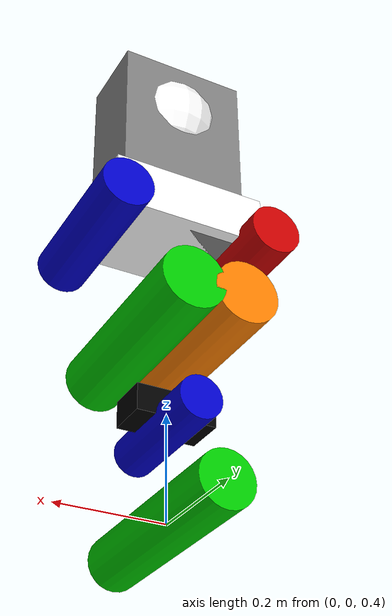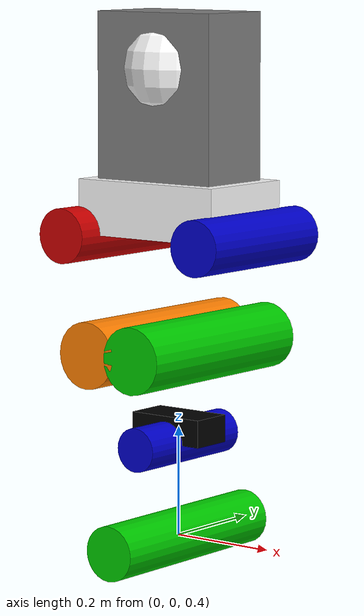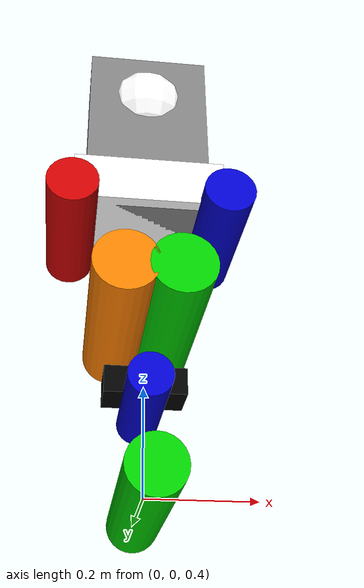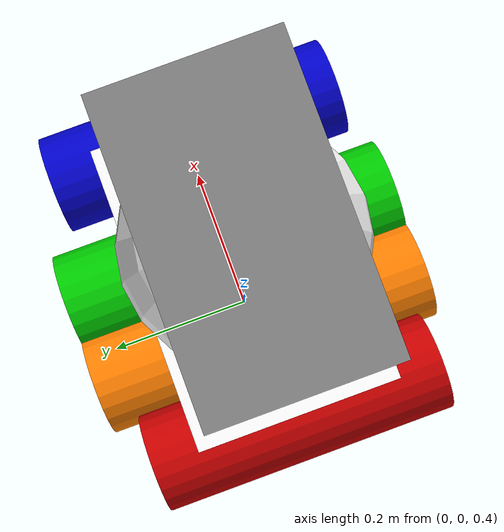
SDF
<?xml version="1.0"?>
<sdf version="1.7">
  <model name="humanoid_robot">
    <pose>0 0 1 0 0 0</pose>
    <static>false</static>

    <!-- Base Link -->
    <link name="base_link">
      <pose>0 0 0 0 0 0</pose>
      <inertial>
        <mass>5.0</mass>
        <inertia>
          <ixx>0.1</ixx>
          <ixy>0.0</ixy>
          <ixz>0.0</ixz>
          <iyy>0.1</iyy>
          <iyz>0.0</iyz>
          <izz>0.1</izz>
        </inertia>
      </inertial>

      <visual name="base_visual">
        <geometry>
          <box>
            <size>0.3 0.2 0.1</size>
          </box>
        </geometry>
        <material>
          <ambient>1 1 1 1</ambient>
          <diffuse>1 1 1 1</diffuse>
          <specular>0.1 0.1 0.1 1</specular>
        </material>
      </visual>

      <collision name="base_collision">
        <geometry>
          <box>
            <size>0.3 0.2 0.1</size>
          </box>
        </geometry>
      </collision>
    </link>

    <!-- Torso -->
    <joint name="torso_joint" type="fixed">
      <parent>base_link</parent>
      <child>torso</child>
    </joint>

    <link name="torso">
      <pose>0 0 0.15 0 0 0</pose>
      <inertial>
        <mass>8.0</mass>
        <inertia>
          <ixx>0.2</ixx>
          <ixy>0.0</ixy>
          <ixz>0.0</ixz>
          <iyy>0.3</iyy>
          <iyz>0.0</iyz>
          <izz>0.2</izz>
        </inertia>
      </inertial>

      <visual name="torso_visual">
        <geometry>
          <box>
            <size>0.25 0.15 0.4</size>
          </box>
        </geometry>
        <material>
          <ambient>0.5 0.5 0.5 1</ambient>
          <diffuse>0.5 0.5 0.5 1</diffuse>
        </material>
      </visual>

      <collision name="torso_collision">
        <geometry>
          <box>
            <size>0.25 0.15 0.4</size>
          </box>
        </geometry>
      </collision>
    </link>

    <!-- Head -->
    <joint name="neck_joint" type="revolute">
      <parent>torso</parent>
      <child>head</child>
      <pose>0 0 0.25 0 0 0</pose>
      <axis>
        <xyz>0 1 0</xyz>
        <limit>
          <lower>-0.5</lower>
          <upper>0.5</upper>
          <effort>10.0</effort>
          <velocity>2.0</velocity>
        </limit>
      </axis>
    </joint>

    <link name="head">
      <pose>0 0 0.25 0 0 0</pose>
      <inertial>
        <mass>1.0</mass>
        <inertia>
          <ixx>0.002</ixx>
          <ixy>0.0</ixy>
          <ixz>0.0</ixz>
          <iyy>0.002</iyy>
          <iyz>0.0</iyz>
          <izz>0.002</izz>
        </inertia>
      </inertial>

      <visual name="head_visual">
        <geometry>
          <sphere>
            <radius>0.1</radius>
          </sphere>
        </geometry>
        <material>
          <ambient>1 1 1 1</ambient>
          <diffuse>1 1 1 1</diffuse>
        </material>
      </visual>

      <collision name="head_collision">
        <geometry>
          <sphere>
            <radius>0.1</radius>
          </sphere>
        </geometry>
      </collision>
    </link>

    <!-- Left Arm -->
    <joint name="left_shoulder_joint" type="revolute">
      <parent>torso</parent>
      <child>left_upper_arm</child>
      <pose>0.15 0 0.1 0 0 0</pose>
      <axis>
        <xyz>0 1 0</xyz>
        <limit>
          <lower>-1.57</lower>
          <upper>1.57</upper>
          <effort>15.0</effort>
          <velocity>2.0</velocity>
        </limit>
      </axis>
    </joint>

    <link name="left_upper_arm">
      <pose>0.15 0 0.1 0 0 0</pose>
      <inertial>
        <mass>2.0</mass>
        <inertia>
          <ixx>0.02</ixx>
          <ixy>0.0</ixy>
          <ixz>0.0</ixz>
          <iyy>0.02</iyy>
          <iyz>0.0</iyz>
          <izz>0.001</izz>
        </inertia>
      </inertial>

      <visual name="left_upper_arm_visual">
        <geometry>
          <cylinder>
            <length>0.3</length>
            <radius>0.05</radius>
          </cylinder>
        </geometry>
        <pose>0 0 -0.15 1.57 0 0</pose>
        <material>
          <ambient>0 0 0.8 1</ambient>
          <diffuse>0 0 0.8 1</diffuse>
        </material>
      </visual>

      <collision name="left_upper_arm_collision">
        <geometry>
          <cylinder>
            <length>0.3</length>
            <radius>0.05</radius>
          </cylinder>
        </geometry>
        <pose>0 0 -0.15 1.57 0 0</pose>
      </collision>
    </link>

    <joint name="left_elbow_joint" type="revolute">
      <parent>left_upper_arm</parent>
      <child>left_lower_arm</child>
      <pose>0 0 -0.3 0 0 0</pose>
      <axis>
        <xyz>0 0 1</xyz>
        <limit>
          <lower>-1.57</lower>
          <upper>1.57</upper>
          <effort>10.0</effort>
          <velocity>2.0</velocity>
        </limit>
      </axis>
    </joint>

    <link name="left_lower_arm">
      <pose>0 0 -0.3 0 0 0</pose>
      <inertial>
        <mass>1.5</mass>
        <inertia>
          <ixx>0.01</ixx>
          <ixy>0.0</ixy>
          <ixz>0.0</ixz>
          <iyy>0.01</iyy>
          <iyz>0.0</iyz>
          <izz>0.001</izz>
        </inertia>
      </inertial>

      <visual name="left_lower_arm_visual">
        <geometry>
          <cylinder>
            <length>0.25</length>
            <radius>0.04</radius>
          </cylinder>
        </geometry>
        <pose>0 0 -0.125 1.57 0 0</pose>
        <material>
          <ambient>0 0 0.8 1</ambient>
          <diffuse>0 0 0.8 1</diffuse>
        </material>
      </visual>

      <collision name="left_lower_arm_collision">
        <geometry>
          <cylinder>
            <length>0.25</length>
            <radius>0.04</radius>
          </cylinder>
        </geometry>
        <pose>0 0 -0.125 1.57 0 0</pose>
      </collision>
    </link>

    <!-- Right Arm -->
    <joint name="right_shoulder_joint" type="revolute">
      <parent>torso</parent>
      <child>right_upper_arm</child>
      <pose>-0.15 0 0.1 0 0 0</pose>
      <axis>
        <xyz>0 1 0</xyz>
        <limit>
          <lower>-1.57</lower>
          <upper>1.57</upper>
          <effort>15.0</effort>
          <velocity>2.0</velocity>
        </limit>
      </axis>
    </joint>

    <link name="right_upper_arm">
      <pose>-0.15 0 0.1 0 0 0</pose>
      <inertial>
        <mass>2.0</mass>
        <inertia>
          <ixx>0.02</ixx>
          <ixy>0.0</ixy>
          <ixz>0.0</ixz>
          <iyy>0.02</iyy>
          <iyz>0.0</iyz>
          <izz>0.001</izz>
        </inertia>
      </inertial>

      <visual name="right_upper_arm_visual">
        <geometry>
          <cylinder>
            <length>0.3</length>
            <radius>0.05</radius>
          </cylinder>
        </geometry>
        <pose>0 0 -0.15 1.57 0 0</pose>
        <material>
          <ambient>0.8 0 0 1</ambient>
          <diffuse>0.8 0 0 1</diffuse>
        </material>
      </visual>

      <collision name="right_upper_arm_collision">
        <geometry>
          <cylinder>
            <length>0.3</length>
            <radius>0.05</radius>
          </cylinder>
        </geometry>
        <pose>0 0 -0.15 1.57 0 0</pose>
      </collision>
    </link>

    <joint name="right_elbow_joint" type="revolute">
      <parent>right_upper_arm</parent>
      <child>right_lower_arm</child>
      <pose>0 0 -0.3 0 0 0</pose>
      <axis>
        <xyz>0 0 1</xyz>
        <limit>
          <lower>-1.57</lower>
          <upper>1.57</upper>
          <effort>10.0</effort>
          <velocity>2.0</velocity>
        </limit>
      </axis>
    </joint>

    <link name="right_lower_arm">
      <pose>0 0 -0.3 0 0 0</pose>
      <inertial>
        <mass>1.5</mass>
        <inertia>
          <ixx>0.01</ixx>
          <ixy>0.0</ixy>
          <ixz>0.0</ixz>
          <iyy>0.01</iyy>
          <iyz>0.0</iyz>
          <izz>0.001</izz>
        </inertia>
      </inertial>

      <visual name="right_lower_arm_visual">
        <geometry>
          <cylinder>
            <length>0.25</length>
            <radius>0.04</radius>
          </cylinder>
        </geometry>
        <pose>0 0 -0.125 1.57 0 0</pose>
        <material>
          <ambient>0.8 0 0 1</ambient>
          <diffuse>0.8 0 0 1</diffuse>
        </material>
      </visual>

      <collision name="right_lower_arm_collision">
        <geometry>
          <cylinder>
            <length>0.25</length>
            <radius>0.04</radius>
          </cylinder>
        </geometry>
        <pose>0 0 -0.125 1.57 0 0</pose>
      </collision>
    </link>

    <!-- Left Leg -->
    <joint name="left_hip_joint" type="revolute">
      <parent>base_link</parent>
      <child>left_thigh</child>
      <pose>0.05 0 -0.05 0 0 0</pose>
      <axis>
        <xyz>0 1 0</xyz>
        <limit>
          <lower>-1.57</lower>
          <upper>1.57</upper>
          <effort>30.0</effort>
          <velocity>2.0</velocity>
        </limit>
      </axis>
    </joint>

    <link name="left_thigh">
      <pose>0.05 0 -0.05 0 0 0</pose>
      <inertial>
        <mass>3.0</mass>
        <inertia>
          <ixx>0.04</ixx>
          <ixy>0.0</ixy>
          <ixz>0.0</ixz>
          <iyy>0.04</iyy>
          <iyz>0.0</iyz>
          <izz>0.002</izz>
        </inertia>
      </inertial>

      <visual name="left_thigh_visual">
        <geometry>
          <cylinder>
            <length>0.4</length>
            <radius>0.06</radius>
          </cylinder>
        </geometry>
        <pose>0 0 -0.2 1.57 0 0</pose>
        <material>
          <ambient>0 0.8 0 1</ambient>
          <diffuse>0 0.8 0 1</diffuse>
        </material>
      </visual>

      <collision name="left_thigh_collision">
        <geometry>
          <cylinder>
            <length>0.4</length>
            <radius>0.06</radius>
          </cylinder>
        </geometry>
        <pose>0 0 -0.2 1.57 0 0</pose>
      </collision>
    </link>

    <joint name="left_knee_joint" type="revolute">
      <parent>left_thigh</parent>
      <child>left_shin</child>
      <pose>0 0 -0.4 0 0 0</pose>
      <axis>
        <xyz>0 0 1</xyz>
        <limit>
          <lower>-1.57</lower>
          <upper>0.5</upper>
          <effort>25.0</effort>
          <velocity>2.0</velocity>
        </limit>
      </axis>
    </joint>

    <link name="left_shin">
      <pose>0 0 -0.4 0 0 0</pose>
      <inertial>
        <mass>2.5</mass>
        <inertia>
          <ixx>0.03</ixx>
          <ixy>0.0</ixy>
          <ixz>0.0</ixz>
          <iyy>0.03</iyy>
          <iyz>0.0</iyz>
          <izz>0.002</izz>
        </inertia>
      </inertial>

      <visual name="left_shin_visual">
        <geometry>
          <cylinder>
            <length>0.4</length>
            <radius>0.05</radius>
          </cylinder>
        </geometry>
        <pose>0 0 -0.2 1.57 0 0</pose>
        <material>
          <ambient>0 0.8 0 1</ambient>
          <diffuse>0 0.8 0 1</diffuse>
        </material>
      </visual>

      <collision name="left_shin_collision">
        <geometry>
          <cylinder>
            <length>0.4</length>
            <radius>0.05</radius>
          </cylinder>
        </geometry>
        <pose>0 0 -0.2 1.57 0 0</pose>
      </collision>
    </link>

    <joint name="left_ankle_joint" type="revolute">
      <parent>left_shin</parent>
      <child>left_foot</child>
      <pose>0 0 -0.4 0 0 0</pose>
      <axis>
        <xyz>0 1 0</xyz>
        <limit>
          <lower>-0.5</lower>
          <upper>0.5</upper>
          <effort>15.0</effort>
          <velocity>2.0</velocity>
        </limit>
      </axis>
    </joint>

    <link name="left_foot">
      <pose>0 0 -0.4 0 0 0</pose>
      <inertial>
        <mass>1.0</mass>
        <inertia>
          <ixx>0.001</ixx>
          <ixy>0.0</ixy>
          <ixz>0.0</ixz>
          <iyy>0.001</iyy>
          <iyz>0.0</iyz>
          <izz>0.001</izz>
        </inertia>
      </inertial>

      <visual name="left_foot_visual">
        <geometry>
          <box>
            <size>0.15 0.08 0.05</size>
          </box>
        </geometry>
        <material>
          <ambient>0 0 0 1</ambient>
          <diffuse>0 0 0 1</diffuse>
        </material>
      </visual>

      <collision name="left_foot_collision">
        <geometry>
          <box>
            <size>0.15 0.08 0.05</size>
          </box>
        </geometry>
      </collision>
    </link>

    <!-- Right Leg -->
    <joint name="right_hip_joint" type="revolute">
      <parent>base_link</parent>
      <child>right_thigh</child>
      <pose>-0.05 0 -0.05 0 0 0</pose>
      <axis>
        <xyz>0 1 0</xyz>
        <limit>
          <lower>-1.57</lower>
          <upper>1.57</upper>
          <effort>30.0</effort>
          <velocity>2.0</velocity>
        </limit>
      </axis>
    </joint>

    <link name="right_thigh">
      <pose>-0.05 0 -0.05 0 0 0</pose>
      <inertial>
        <mass>3.0</mass>
        <inertia>
          <ixx>0.04</ixx>
          <ixy>0.0</ixy>
          <ixz>0.0</ixz>
          <iyy>0.04</iyy>
          <iyz>0.0</iyz>
          <izz>0.002</izz>
        </inertia>
      </inertial>

      <visual name="right_thigh_visual">
        <geometry>
          <cylinder>
            <length>0.4</length>
            <radius>0.06</radius>
          </cylinder>
        </geometry>
        <pose>0 0 -0.2 1.57 0 0</pose>
        <material>
          <ambient>1.0 0.5 0.0 1</ambient>
          <diffuse>1.0 0.5 0.0 1</diffuse>
        </material>
      </visual>

      <collision name="right_thigh_collision">
        <geometry>
          <cylinder>
            <length>0.4</length>
            <radius>0.06</radius>
          </cylinder>
        </geometry>
        <pose>0 0 -0.2 1.57 0 0</pose>
      </collision>
    </link>

    <joint name="right_knee_joint" type="revolute">
      <parent>right_thigh</parent>
      <child>right_shin</child>
      <pose>0 0 -0.4 0 0 0</pose>
      <axis>
        <xyz>0 0 1</xyz>
        <limit>
          <lower>-1.57</lower>
          <upper>0.5</upper>
          <effort>25.0</effort>
          <velocity>2.0</velocity>
        </limit>
      </axis>
    </joint>

    <link name="right_shin">
      <pose>0 0 -0.4 0 0 0</pose>
      <inertial>
        <mass>2.5</mass>
        <inertia>
          <ixx>0.03</ixx>
          <ixy>0.0</ixy>
          <ixz>0.0</ixz>
          <iyy>0.03</iyy>
          <iyz>0.0</iyz>
          <izz>0.002</izz>
        </inertia>
      </inertial>

      <visual name="right_shin_visual">
        <geometry>
          <cylinder>
            <length>0.4</length>
            <radius>0.05</radius>
          </cylinder>
        </geometry>
        <pose>0 0 -0.2 1.57 0 0</pose>
        <material>
          <ambient>1.0 0.5 0.0 1</ambient>
          <diffuse>1.0 0.5 0.0 1</diffuse>
        </material>
      </visual>

      <collision name="right_shin_collision">
        <geometry>
          <cylinder>
            <length>0.4</length>
            <radius>0.05</radius>
          </cylinder>
        </geometry>
        <pose>0 0 -0.2 1.57 0 0</pose>
      </collision>
    </link>

    <joint name="right_ankle_joint" type="revolute">
      <parent>right_shin</parent>
      <child>right_foot</child>
      <pose>0 0 -0.4 0 0 0</pose>
      <axis>
        <xyz>0 1 0</xyz>
        <limit>
          <lower>-0.5</lower>
          <upper>0.5</upper>
          <effort>15.0</effort>
          <velocity>2.0</velocity>
        </limit>
      </axis>
    </joint>

    <link name="right_foot">
      <pose>0 0 -0.4 0 0 0</pose>
      <inertial>
        <mass>1.0</mass>
        <inertia>
          <ixx>0.001</ixx>
          <ixy>0.0</ixy>
          <ixz>0.0</ixz>
          <iyy>0.001</iyy>
          <iyz>0.0</iyz>
          <izz>0.001</izz>
        </inertia>
      </inertial>

      <visual name="right_foot_visual">
        <geometry>
          <box>
            <size>0.15 0.08 0.05</size>
          </box>
        </geometry>
        <material>
          <ambient>0 0 0 1</ambient>
          <diffuse>0 0 0 1</diffuse>
        </material>
      </visual>

      <collision name="right_foot_collision">
        <geometry>
          <box>
            <size>0.15 0.08 0.05</size>
          </box>
        </geometry>
      </collision>
    </link>

    <!-- Gazebo plugin for ROS control -->
    <plugin name="humanoid_controller" filename="libgazebo_ros_control.so">
      <robotNamespace>/humanoid_robot</robotNamespace>
      <robotParam>robot_description</robotParam>
    </plugin>
  </model>
</sdf>
